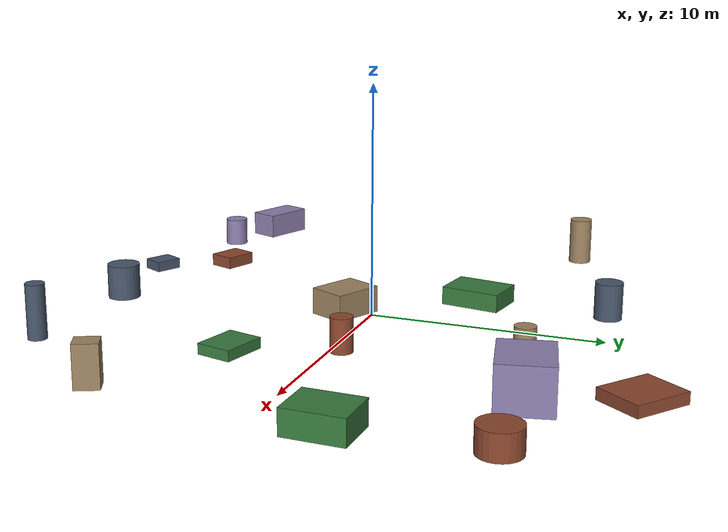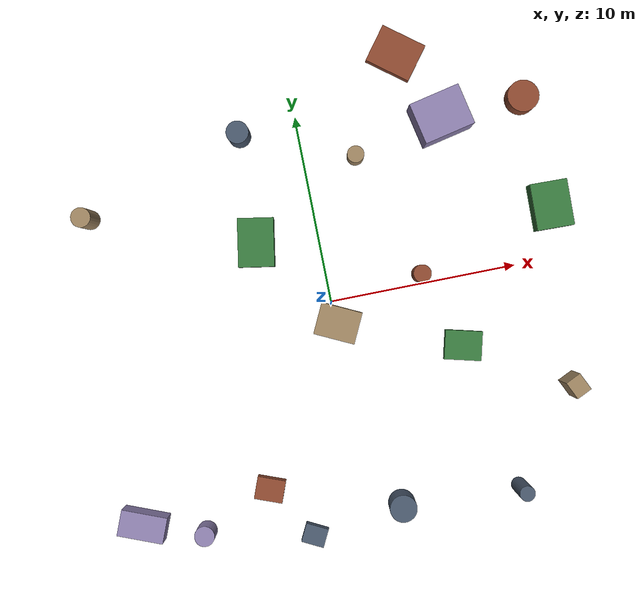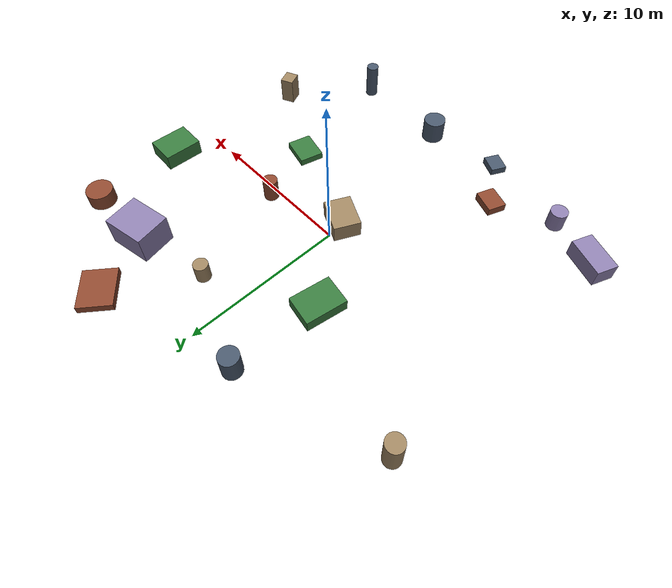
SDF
<sdf version="1.10">
 <world name="robotx_task1_uav_view">
  <gravity>0 0 -9.81</gravity>
  <physics name="physics" type="ode">
   <max_step_size>0.002</max_step_size>
   <real_time_factor>1.0</real_time_factor>
  </physics>
  <scene>
   <ambient>0.14 0.14 0.14 1.0</ambient>
   <background>0.32 0.32 0.38 1.0</background>
   <shadows>true</shadows>
   <grid>false</grid>
  </scene>
  <light name="sun" type="directional">
   <pose>0 0 300 0 0 0</pose>
   <diffuse>0.35 0.35 0.35 1.0</diffuse>
   <specular>0.12 0.12 0.12 1.0</specular>
   <direction>0.12 -0.05 -1.0</direction>
   <attenuation>
    <range>2500</range>
    <constant>0.85</constant>
    <linear>0.001</linear>
    <quadratic>0.00005</quadratic>
   </attenuation>
  </light>
  <plugin filename="gz-sim-physics-system" name="gz::sim::systems::Physics"/>
  <plugin filename="gz-sim-user-commands-system" name="gz::sim::systems::UserCommands"/>
  <plugin filename="gz-sim-scene-broadcaster-system" name="gz::sim::systems::SceneBroadcaster"/>
  <plugin filename="gz-sim-sensors-system" name="gz::sim::systems::Sensors">
   <render_engine>ogre2</render_engine>
  </plugin>
  <model name="scene_clutter_box_000">
   <static>true</static>
   <pose>11.712 -6.762 0.910 0 0 -1.131498</pose>
   <link name="link">
    <visual name="v">
     <geometry><box><size>1.002 0.873 1.780</size></box></geometry>
     <material><ambient>0.45 0.38 0.32 1.0</ambient><diffuse>0.62 0.52 0.38 1.0</diffuse></material>
    </visual>
   </link>
  </model>
  <model name="scene_clutter_box_001">
   <static>true</static>
   <pose>-3.241 -12.019 0.252 0 0 -2.042119</pose>
   <link name="link">
    <visual name="v">
     <geometry><box><size>1.015 1.220 0.464</size></box></geometry>
     <material><ambient>0.18 0.22 0.28 1.0</ambient><diffuse>0.28 0.34 0.42 1.0</diffuse></material>
    </visual>
   </link>
  </model>
  <model name="scene_clutter_cyl_002">
   <static>true</static>
   <pose>11.980 8.634 0.559 0 0 -1.727978</pose>
   <link name="link">
    <visual name="v">
     <geometry><cylinder><radius>0.837</radius><length>1.018</length></cylinder></geometry>
     <material><ambient>0.35 0.16 0.12 1.0</ambient><diffuse>0.55 0.28 0.18 1.0</diffuse></material>
    </visual>
   </link>
  </model>
  <model name="scene_clutter_box_003">
   <static>true</static>
   <pose>-3.292 3.823 0.414 0 0 -1.737063</pose>
   <link name="link">
    <visual name="v">
     <geometry><box><size>2.596 1.908 0.787</size></box></geometry>
     <material><ambient>0.12 0.30 0.14 1.0</ambient><diffuse>0.22 0.48 0.24 1.0</diffuse></material>
    </visual>
   </link>
  </model>
  <model name="scene_clutter_box_004">
   <static>true</static>
   <pose>7.495 8.407 0.964 0 0 0.212763</pose>
   <link name="link">
    <visual name="v">
     <geometry><box><size>2.734 2.195 1.887</size></box></geometry>
     <material><ambient>0.40 0.35 0.50 1.0</ambient><diffuse>0.55 0.50 0.68 1.0</diffuse></material>
    </visual>
   </link>
  </model>
  <model name="scene_clutter_box_005">
   <static>true</static>
   <pose>0.131 -1.190 0.593 0 0 -0.450731</pose>
   <link name="link">
    <visual name="v">
     <geometry><box><size>2.211 1.703 1.147</size></box></geometry>
     <material><ambient>0.45 0.38 0.32 1.0</ambient><diffuse>0.62 0.52 0.38 1.0</diffuse></material>
    </visual>
   </link>
  </model>
  <model name="scene_clutter_cyl_006">
   <static>true</static>
   <pose>-3.075 9.561 0.850 0 0 -0.223677</pose>
   <link name="link">
    <visual name="v">
     <geometry><cylinder><radius>0.594</radius><length>1.600</length></cylinder></geometry>
     <material><ambient>0.18 0.22 0.28 1.0</ambient><diffuse>0.28 0.34 0.42 1.0</diffuse></material>
    </visual>
   </link>
  </model>
  <model name="scene_clutter_box_007">
   <static>true</static>
   <pose>5.900 12.258 0.265 0 0 0.922267</pose>
   <link name="link">
    <visual name="v">
     <geometry><box><size>2.071 2.510 0.490</size></box></geometry>
     <material><ambient>0.35 0.16 0.12 1.0</ambient><diffuse>0.55 0.28 0.18 1.0</diffuse></material>
    </visual>
   </link>
  </model>
  <model name="scene_clutter_box_008">
   <static>true</static>
   <pose>6.436 -3.650 0.250 0 0 -0.246586</pose>
   <link name="link">
    <visual name="v">
     <geometry><box><size>1.970 1.564 0.460</size></box></geometry>
     <material><ambient>0.12 0.30 0.14 1.0</ambient><diffuse>0.22 0.48 0.24 1.0</diffuse></material>
    </visual>
   </link>
  </model>
  <model name="scene_clutter_box_009">
   <static>true</static>
   <pose>-11.990 -9.661 0.599 0 0 -1.948808</pose>
   <link name="link">
    <visual name="v">
     <geometry><box><size>1.383 2.443 1.157</size></box></geometry>
     <material><ambient>0.40 0.35 0.50 1.0</ambient><diffuse>0.55 0.50 0.68 1.0</diffuse></material>
    </visual>
   </link>
  </model>
  <model name="scene_clutter_cyl_010">
   <static>true</static>
   <pose>-11.766 6.737 1.113 0 0 -1.017445</pose>
   <link name="link">
    <visual name="v">
     <geometry><cylinder><radius>0.515</radius><length>2.125</length></cylinder></geometry>
     <material><ambient>0.45 0.38 0.32 1.0</ambient><diffuse>0.62 0.52 0.38 1.0</diffuse></material>
    </visual>
   </link>
  </model>
  <model name="scene_clutter_cyl_011">
   <static>true</static>
   <pose>7.943 -11.548 1.216 0 0 1.187673</pose>
   <link name="link">
    <visual name="v">
     <geometry><cylinder><radius>0.402</radius><length>2.332</length></cylinder></geometry>
     <material><ambient>0.18 0.22 0.28 1.0</ambient><diffuse>0.28 0.34 0.42 1.0</diffuse></material>
    </visual>
   </link>
  </model>
  <model name="scene_clutter_cyl_012">
   <static>true</static>
   <pose>4.947 0.510 0.781 0 0 -0.250838</pose>
   <link name="link">
    <visual name="v">
     <geometry><cylinder><radius>0.469</radius><length>1.463</length></cylinder></geometry>
     <material><ambient>0.35 0.16 0.12 1.0</ambient><diffuse>0.55 0.28 0.18 1.0</diffuse></material>
    </visual>
   </link>
  </model>
  <model name="scene_clutter_box_013">
   <static>true</static>
   <pose>12.365 2.746 0.538 0 0 -0.021626</pose>
   <link name="link">
    <visual name="v">
     <geometry><box><size>1.975 2.460 1.035</size></box></geometry>
     <material><ambient>0.12 0.30 0.14 1.0</ambient><diffuse>0.22 0.48 0.24 1.0</diffuse></material>
    </visual>
   </link>
  </model>
  <model name="scene_clutter_cyl_014">
   <static>true</static>
   <pose>-8.849 -10.742 0.696 0 0 -1.111378</pose>
   <link name="link">
    <visual name="v">
     <geometry><cylinder><radius>0.532</radius><length>1.291</length></cylinder></geometry>
     <material><ambient>0.40 0.35 0.50 1.0</ambient><diffuse>0.55 0.50 0.68 1.0</diffuse></material>
    </visual>
   </link>
  </model>
  <model name="scene_clutter_cyl_015">
   <static>true</static>
   <pose>2.751 7.308 0.654 0 0 1.981529</pose>
   <link name="link">
    <visual name="v">
     <geometry><cylinder><radius>0.448</radius><length>1.208</length></cylinder></geometry>
     <material><ambient>0.45 0.38 0.32 1.0</ambient><diffuse>0.62 0.52 0.38 1.0</diffuse></material>
    </visual>
   </link>
  </model>
  <model name="scene_clutter_cyl_016">
   <static>true</static>
   <pose>1.613 -11.282 0.807 0 0 0.655992</pose>
   <link name="link">
    <visual name="v">
     <geometry><cylinder><radius>0.713</radius><length>1.514</length></cylinder></geometry>
     <material><ambient>0.18 0.22 0.28 1.0</ambient><diffuse>0.28 0.34 0.42 1.0</diffuse></material>
    </visual>
   </link>
  </model>
  <model name="scene_clutter_box_017">
   <static>true</static>
   <pose>-5.109 -9.169 0.292 0 0 1.205620</pose>
   <link name="link">
    <visual name="v">
     <geometry><box><size>1.203 1.509 0.544</size></box></geometry>
     <material><ambient>0.35 0.16 0.12 1.0</ambient><diffuse>0.55 0.28 0.18 1.0</diffuse></material>
    </visual>
   </link>
  </model>
  <model name="uav_dataset_camera">
   <static>false</static>
   <pose>0 0 26 0 0 0</pose>
   <plugin filename="librobotx_overhead_motion_plugin.dylib" name="robotx::OverheadMotionPlugin">
    <radius_x_m>11.67068</radius_x_m>
    <radius_y_m>7.47368</radius_y_m>
    <angular_speed_rad_s>0.073871</angular_speed_rad_s>
    <phase_rad>0.869758</phase_rad>
    <z_wobble_m>0.03262</z_wobble_m>
    <z_wobble_hz>0.03377</z_wobble_hz>
    <z_wobble_phase_rad>3.807605</z_wobble_phase_rad>
   </plugin>
   <link name="camera_link">
    <gravity>false</gravity>
    <sensor name="top_down_rgb" type="camera">
     <always_on>true</always_on>
     <update_rate>20</update_rate>
     <pose>0 0 0 0 1.57079632679 0</pose>
     <camera>
      <horizontal_fov>1.05</horizontal_fov>
      <image><width>1920</width><height>1080</height><format>R8G8B8</format></image>
      <clip><near>0.2</near><far>600</far></clip>
     </camera>
     <topic>/robotx/uav/camera/image_raw</topic>
     <visualize>true</visualize>
    </sensor>
   </link>
  </model>
 </world>
</sdf>
